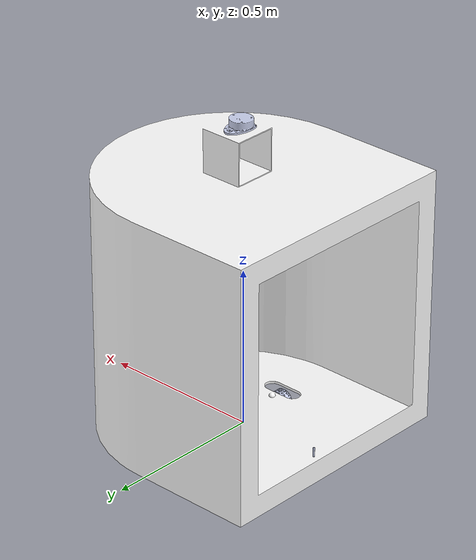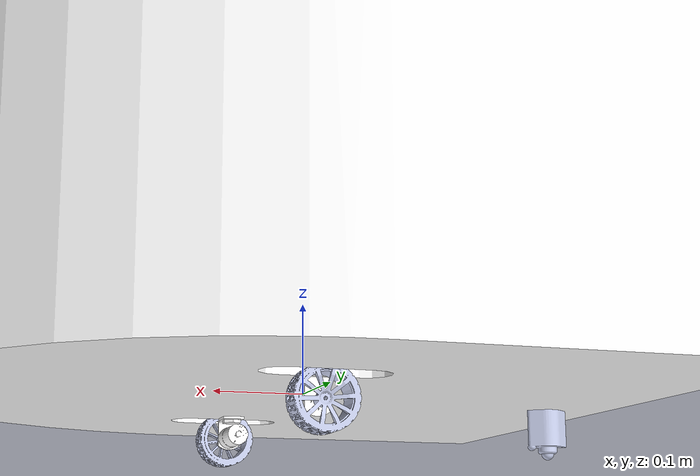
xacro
<?xml version="1.0" encoding="utf-8"?>
<robot
  name="auonomous_description" xmlns:xacro="http://www.ros.org/wiki/xacro">
  <xacro:include filename="$(find auonomous_description)/urdf/autonomous.gazebo"/>

  <link name="robot_footprint">
     </link>

      <joint name="robot_footprint_joint" type="fixed">
        <parent link="robot_footprint"/>
        <child link="base_link"/>
     </joint>
  <link
    name="base_link">
    <inertial>
      <origin
        xyz="0.090466 -0.00029792 0.32147"
        rpy="0 0 0" />
      <mass
        value="2.402" />
      <inertia
        ixx="0.31072"
        ixy="3.2743E-05"
        ixz="-0.029155"
        iyy="0.29942"
        iyz="4.2036E-05"
        izz="0.31747" />
    </inertial>
    <visual>
      <origin
        xyz="0 0 0"
        rpy="0 0 0" />
      <geometry>
        <mesh
          filename="package://auonomous_description/meshes/base_link.STL" />
      </geometry>
      <material
        name="">
        <color
          rgba="1 1 1 1" />
      </material>
    </visual>
    <collision>
      <origin
        xyz="0 0 0"
        rpy="0 0 0" />
      <geometry>
        <mesh
          filename="package://auonomous_description/meshes/base_link.STL" />
      </geometry>
    </collision>
  </link>
  <link
    name="right_wheel">
    <inertial>
      <origin
        xyz="0.00084921 8.4443E-05 -0.0058168"
        rpy="0 0 0" />
      <mass
        value="0.041926" />
      <inertia
        ixx="1.8408E-05"
        ixy="3.1848E-09"
        ixz="4.2993E-10"
        iyy="1.8374E-05"
        iyz="3.198E-11"
        izz="3.0919E-05" />
    </inertial>
    <visual>
      <origin
        xyz="0 0 0"
        rpy="0 0 0" />
      <geometry>
        <mesh
          filename="package://auonomous_description/meshes/right_wheel.STL" />
      </geometry>
      <material
        name="">
        <color
          rgba="0.79216 0.81961 0.93333 1" />
      </material>
    </visual>
    <collision>
      <origin
        xyz="0 0 0"
        rpy="0 0 0" />
      <geometry>
        <mesh
          filename="package://auonomous_description/meshes/right_wheel.STL" />
      </geometry>
    </collision>
  </link>
  <joint
    name="right_wheel_joint"
    type="continuous">
    <origin
      xyz="0.0400599889553063 -0.21271 -0.0314956241897666"
      rpy="1.5707963267949 0 0" />
    <parent
      link="base_link" />
    <child
      link="right_wheel" />
    <axis
      xyz="0 0 -1" />
  </joint>
  <link
    name="left_wheel">
    <inertial>
      <origin
        xyz="0.00053202 0.00066727 0.0058168"
        rpy="0 0 0" />
      <mass
        value="0.041926" />
      <inertia
        ixx="1.8387E-05"
        ixy="1.6994E-08"
        ixz="-2.6029E-10"
        iyy="1.8395E-05"
        iyz="-3.4362E-10"
        izz="3.0919E-05" />
    </inertial>
    <visual>
      <origin
        xyz="0 0 0"
        rpy="0 0 0" />
      <geometry>
        <mesh
          filename="package://auonomous_description/meshes/left_wheel.STL" />
      </geometry>
      <material
        name="">
        <color
          rgba="0.79216 0.81961 0.93333 1" />
      </material>
    </visual>
    <collision>
      <origin
        xyz="0 0 0"
        rpy="0 0 0" />
      <geometry>
        <mesh
          filename="package://auonomous_description/meshes/left_wheel.STL" />
      </geometry>
    </collision>
  </link>
  <joint
    name="left_wheel_joint"
    type="continuous">
    <origin
      xyz="0.0400599889553063 0.21271 -0.0314956241897668"
      rpy="1.5707963267949 0 0" />
    <parent
      link="base_link" />
    <child
      link="left_wheel" />
    <axis
      xyz="0 0 -1" />
  </joint>
  <link
    name="front_caster">
    <inertial>
      <origin
        xyz="-0.00213751528649231 -0.00328128668976557 0.0288917131404438"
        rpy="0 0 0" />
      <mass
        value="0.0471373025479551" />
      <inertia
        ixx="1.19309041827028E-05"
        ixy="-1.56109532632465E-11"
        ixz="5.36632360255611E-11"
        iyy="1.39116962020014E-05"
        iyz="9.7736821352451E-11"
        izz="7.06512568681493E-06" />
    </inertial>
    <visual>
      <origin
        xyz="0 0 0"
        rpy="0 0 0" />
      <geometry>
        <mesh
          filename="package://auonomous_description/meshes/front_caster.STL" />
      </geometry>
      <material
        name="">
        <color
          rgba="0.792156862745098 0.819607843137255 0.933333333333333 1" />
      </material>
    </visual>
    <collision>
      <origin
        xyz="0 0 0"
        rpy="0 0 0" />
      <geometry>
        <mesh
          filename="package://auonomous_description/meshes/front_caster.STL" />
      </geometry>
    </collision>
  </link>
  <joint
    name="front_caster_joint"
    type="fixed">
    <origin
      xyz="0.373775802962375 0.00328135075652725 -0.0574673313660244"
      rpy="0 0 0" />
    <parent
      link="base_link" />
    <child
      link="front_caster" />
    <axis
      xyz="0 0 0" />
  </joint>
  <link
    name="back_caster">
    <inertial>
      <origin
        xyz="-0.00029439 -0.0032814 0.028892"
        rpy="0 0 0" />
      <mass
        value="0.047137" />
      <inertia
        ixx="1.1931E-05"
        ixy="1.9494E-12"
        ixz="-5.7646E-13"
        iyy="1.3912E-05"
        iyz="2.2648E-10"
        izz="7.0651E-06" />
    </inertial>
    <visual>
      <origin
        xyz="0 0 0"
        rpy="0 0 0" />
      <geometry>
        <mesh
          filename="package://auonomous_description/meshes/back_caster.STL" />
      </geometry>
      <material
        name="">
        <color
          rgba="0.79216 0.81961 0.93333 1" />
      </material>
    </visual>
    <collision>
      <origin
        xyz="0 0 0"
        rpy="0 0 0" />
      <geometry>
        <mesh
          filename="package://auonomous_description/meshes/back_caster.STL" />
      </geometry>
    </collision>
  </link>
  <joint
    name="back_caster_joint"
    type="fixed">
    <origin
      xyz="-0.291224197037628 0.00328135075652652 -0.0574673313660244"
      rpy="0 0 0" />
    <parent
      link="base_link" />
    <child
      link="back_caster" />
    <axis
      xyz="0 0 0" />
  </joint>

  <link
    name="laser">
    <inertial>
      <origin
        xyz="-0.00060821 0.0057755 -0.019562"
        rpy="0 0 0" />
      <mass
        value="0.14299" />
      <inertia ixx="0.0" ixy="0.0" ixz="0.0" iyy="0.0" iyz="0.0" izz="0.0"/>
    </inertial>
    <visual>
      <origin
        xyz="0 0 0"
        rpy="0 0 0" />
      <geometry>
        <mesh
          filename="package://auonomous_description/meshes/lidar_Link.STL" />
      </geometry>
      <material
        name="">
        <color
          rgba="0.79216 0.81961 0.93333 1" />
      </material>
    </visual>
    <collision>
      <origin
        xyz="0 0 0"
        rpy="0 0 0" />
      <geometry>
        <mesh
          filename="package://auonomous_description/meshes/lidar_Link.STL" />
      </geometry>
    </collision>
  </link>

  <joint
    name="lidar_Link_joint"
    type="fixed">
    <origin
      xyz="0.0332911368587601 -0.025355271833562 0.9566"
      rpy="0 0 0" />
    <parent
      link="base_link" />
    <child
      link="laser" />
    <axis
      xyz="0 0 0" />
  </joint>

</robot>
